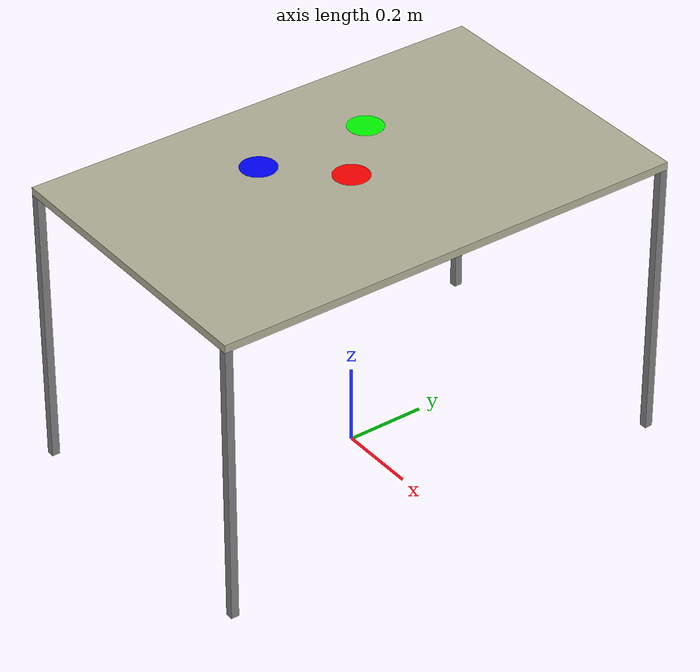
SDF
<?xml version='1.0'?>
<sdf version='1.7'>
  <model name='wooden_table'>
	<link name = "base_link">
		<inertial>
			<mass>24</mass>
			<inertia>
				<ixx>0.003</ixx>
				<ixy>0</ixy>
				<ixz>0</ixz>
				<iyy>0.008</iyy>
				<iyz>0</iyz>
				<izz>0.005</izz>
			</inertia>
		</inertial>
		<pose>0 0 0 0 -0 0</pose>
		<visual name="visual">
			<pose>0 0 0.73 0 0 0</pose>
			<geometry>
				<box>
					<size>0.76 1.215 0.02</size>
				</box>
			</geometry>
			<material>
				<diffuse>0.7 0.7 0.6 1</diffuse>
			</material>
		</visual>
		<collision name="collision">
			<pose>0 0 0.73 0 0 0</pose>
			<geometry>
				<box>
					<size>0.76 1.215 0.02</size>
				</box>
			</geometry>
		</collision>
	</link>
	<link name = "red_peg">
		<inertial>
			<mass>1</mass>
			<inertia>
				<ixx>1e-6</ixx>
				<ixy>0</ixy>
				<ixz>0</ixz>
				<iyy>1e-6</iyy>
				<iyz>0</iyz>
				<izz>1e-6</izz>
			</inertia>
		</inertial>
		<pose>0 0 0 0 -0 0</pose>
		<visual name="red_peg">
			<pose>0 0 0.7301 0 0 0</pose>
			<geometry>
				<cylinder>
					<radius>0.045</radius>
					<length>0.02</length>
				</cylinder>
			</geometry>
			<material>
				<diffuse>1.0 0.0 0.0 1</diffuse>
			</material>
		</visual>
		<collision name="collision">
			<pose>0 0 0.7301 0 0 0</pose>
			<geometry>
				<cylinder>
					<radius>0.045</radius>
					<length>0.02</length>
				</cylinder>
			</geometry>
		</collision>
	</link>
	<link name = "green_peg">
		<inertial>
			<mass>1</mass>
			<inertia>
				<ixx>1e-6</ixx>
				<ixy>0</ixy>
				<ixz>0</ixz>
				<iyy>1e-6</iyy>
				<iyz>0</iyz>
				<izz>1e-6</izz>
			</inertia>
		</inertial>
		<pose>0 0 0 0 -0 0</pose>
		<visual name="green_peg">
			<pose>-0.15 0.15 0.7301 0 0 0</pose>
			<geometry>
				<cylinder>
					<radius>0.045</radius>
					<length>0.02</length>
				</cylinder>
			</geometry>
			<material>
				<diffuse>0.0 1.0 0.0 1</diffuse>
			</material>
		</visual>
		<collision name="collision">
			<pose>-0.15 0.15 0.7301 0 0 0</pose>
			<geometry>
				<cylinder>
					<radius>0.045</radius>
					<length>0.02</length>
				</cylinder>
			</geometry>
		</collision>
	</link>
	<link name = "blue_peg">
		<inertial>
			<mass>1</mass>
			<inertia>
				<ixx>1e-6</ixx>
				<ixy>0</ixy>
				<ixz>0</ixz>
				<iyy>1e-6</iyy>
				<iyz>0</iyz>
				<izz>1e-6</izz>
			</inertia>
		</inertial>
		<pose>0 0 0 0 -0 0</pose>
		<visual name="blue_peg">
			<pose>-0.15 -0.15 0.7301 0 0 0</pose>
			<geometry>
				<cylinder>
					<radius>0.045</radius>
					<length>0.02</length>
				</cylinder>
			</geometry>
			<material>
				<diffuse>0.0 0.0 1.0 1</diffuse>
			</material>
		</visual>
		<collision name="collision">
			<pose>-0.15 -0.15 0.7301 0 0 0</pose>
			<geometry>
				<cylinder>
					<radius>0.045</radius>
					<length>0.02</length>
				</cylinder>
			</geometry>
		</collision>
	</link>
	<joint name = "red_peg_joint" type = "fixed">
		<parent>base_link</parent>
		<child>red_peg</child>
		<pose>0 0 0 0 0 0</pose>
	</joint>
	<joint name = "green_peg_joint" type = "fixed">
		<parent>base_link</parent>
		<child>green_peg</child>
		<pose>0 0 0 0 0 0</pose>
	</joint>
	<joint name = "blue_peg_joint" type = "fixed">
		<parent>base_link</parent>
		<child>blue_peg</child>
		<pose>0 0 0 0 0 0</pose>
	</joint>
	<link name = "front_left_leg">
		<inertial>
			<mass>14</mass>
			<inertia>
				<ixx>0.62</ixx>
				<ixy>0</ixy>
				<ixz>0</ixz>
				<iyy>0.0037</iyy>
				<iyz>0</iyz>
				<izz>0.62</izz>
			</inertia>
		</inertial>
		<pose>0 0 0 0 -0 0</pose>
		<visual name="visual">
			<pose>0.37 0.5975 0.36 0 0 0</pose>
			<geometry>
				<box>
					<size>0.02 0.02 0.72</size>
				</box>
			</geometry>
			<material>
				<diffuse>0.5 0.5 0.5 1</diffuse>
			</material>
		</visual>
		<collision name="collision">
			<pose>0.37 0.5975 0.36 0 0 0</pose>
			<geometry>
				<box>
					<size>0.02 0.02 0.72</size>
				</box>
			</geometry>
		</collision>
	</link>
	<link name = "front_right_leg">
		<inertial>
			<mass>14</mass>
			<inertia>
				<ixx>0.62</ixx>
				<ixy>0</ixy>
				<ixz>0</ixz>
				<iyy>0.0037</iyy>
				<iyz>0</iyz>
				<izz>0.62</izz>
			</inertia>
		</inertial>
		<pose>0 0 0 0 -0 0</pose>
		<visual name="visual">
			<pose>-0.37 0.5975 0.36 0 0 0</pose>
			<geometry>
				<box>
					<size>0.02 0.02 0.72</size>
				</box>
			</geometry>
			<material>
				<diffuse>0.5 0.5 0.5 1</diffuse>
			</material>
		</visual>
		<collision name="collision">
			<pose>-0.37 0.5975 0.36 0 0 0</pose>
			<geometry>
				<box>
					<size>0.02 0.02 0.72</size>
				</box>
			</geometry>
		</collision>
	</link>
	<link name = "back_right_leg">
		<inertial>
			<mass>14</mass>
			<inertia>
				<ixx>0.62</ixx>
				<ixy>0</ixy>
				<ixz>0</ixz>
				<iyy>0.0037</iyy>
				<iyz>0</iyz>
				<izz>0.62</izz>
			</inertia>
		</inertial>
		<pose>0 0 0 0 -0 0</pose>
		<visual name="visual">
			<pose>-0.37 -0.5975 0.36 0 0 0</pose>
			<geometry>
				<box>
					<size>0.02 0.02 0.72</size>
				</box>
			</geometry>
			<material>
				<diffuse>0.5 0.5 0.5 1</diffuse>
			</material>
		</visual>
		<collision name="collision">
			<pose>-0.37 -0.5975 0.36 0 0 0</pose>
			<geometry>
				<box>
					<size>0.02 0.02 0.72</size>
				</box>
			</geometry>
		</collision>
	</link>
	<link name = "back_left_leg">
		<inertial>
			<mass>14</mass>
			<inertia>
				<ixx>0.62</ixx>
				<ixy>0</ixy>
				<ixz>0</ixz>
				<iyy>0.0037</iyy>
				<iyz>0</iyz>
				<izz>0.62</izz>
			</inertia>
		</inertial>
		<pose>0 0 0 0 -0 0</pose>
		<visual name="visual">
			<pose>0.37 -0.5975 0.36 0 0 0</pose>
			<geometry>
				<box>
					<size>0.02 0.02 0.72</size>
				</box>
			</geometry>
			<material>
				<diffuse>0.5 0.5 0.5 1</diffuse>
			</material>
		</visual>
		<collision name="collision">
			<pose>0.37 -0.5975 0.36 0 0 0</pose>
			<geometry>
				<box>
					<size>0.02 0.02 0.72</size>
				</box>
			</geometry>
		</collision>
	</link>
    <joint name='base_front_left' type='fixed'>
		<parent>base_link</parent>
		<child>front_left_leg</child>
		<pose>0 0 0 0 -0 0</pose>
    </joint>
    <joint name='base_front_right' type='fixed'>
		<parent>base_link</parent>
		<child>front_right_leg</child>
		<pose>0 0 0 0 -0 0</pose>
    </joint>
    <joint name='base_back_right' type='fixed'>
		<parent>base_link</parent>
		<child>back_right_leg</child>
		<pose>0 0 0 0 -0 0</pose>
    </joint>
    <joint name='base_back_left' type='fixed'>
		<parent>base_link</parent>
		<child>back_left_leg</child>
		<pose>0 0 0 0 -0 0</pose>
    </joint>
  </model>
</sdf>
